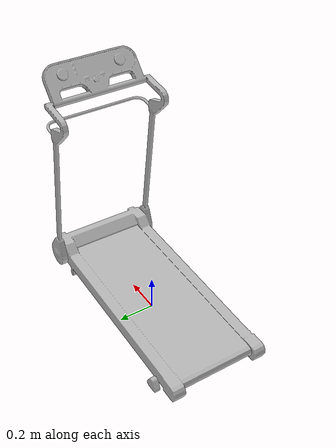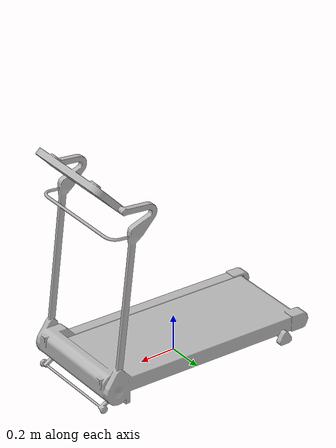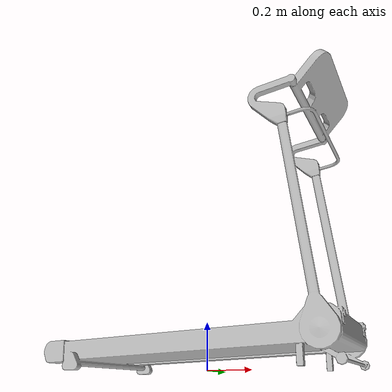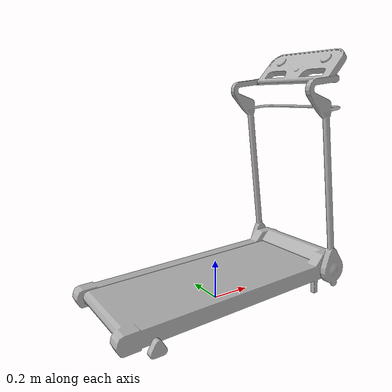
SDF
<?xml version='1.0'?>
<sdf version='1.4'>
  <model name='339'>
    <pose>0 0 0 0 0 0</pose>
    <static>true</static>
    <link name='link'>
      <collision name='collision'>
        <pose>0 0 0 0 0 0</pose>
        <geometry>
          <box>
            <size>1.29999 0.62 2</size>
          </box>
        </geometry>
      </collision>
      <visual name='visual'>
        <pose>0 0 0 0 0 0</pose>
        <geometry>
          <mesh><uri>model://339/339.dae</uri></mesh>
        </geometry>
      </visual>
    </link>
  </model>
</sdf>
